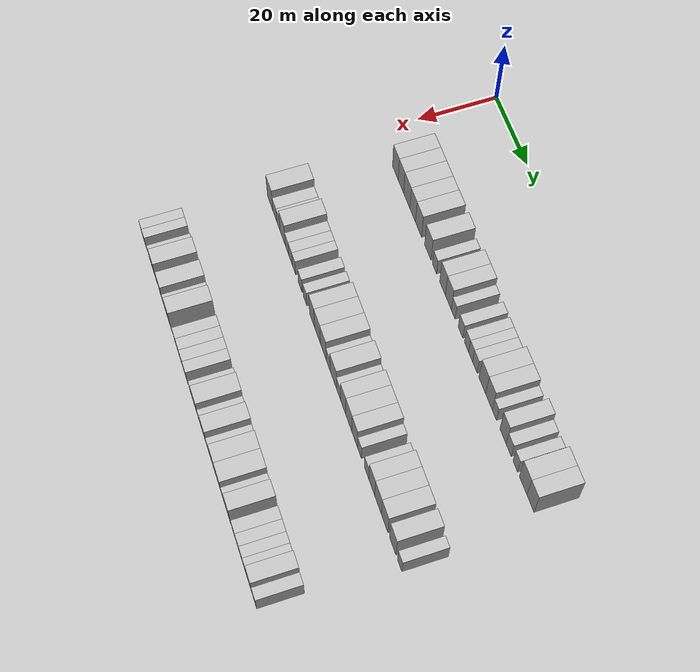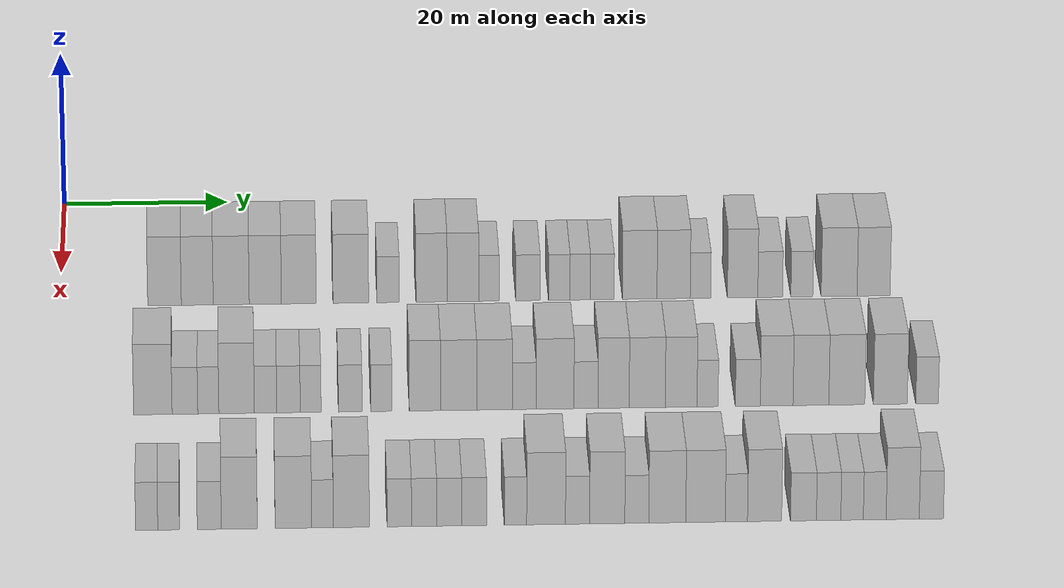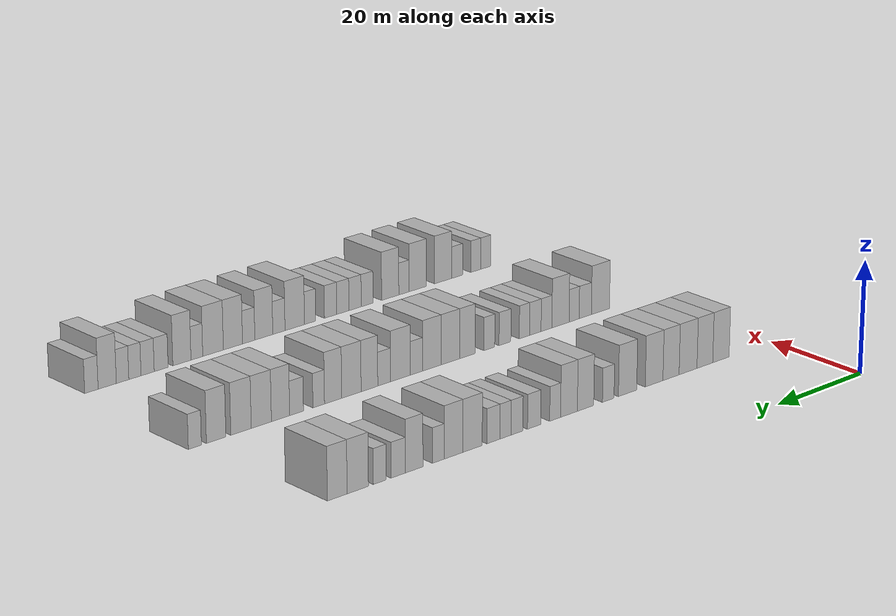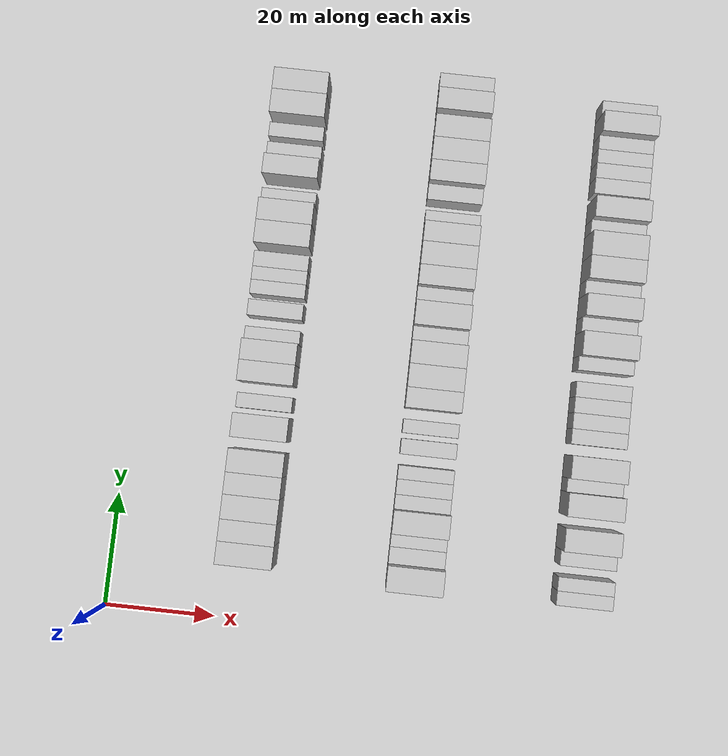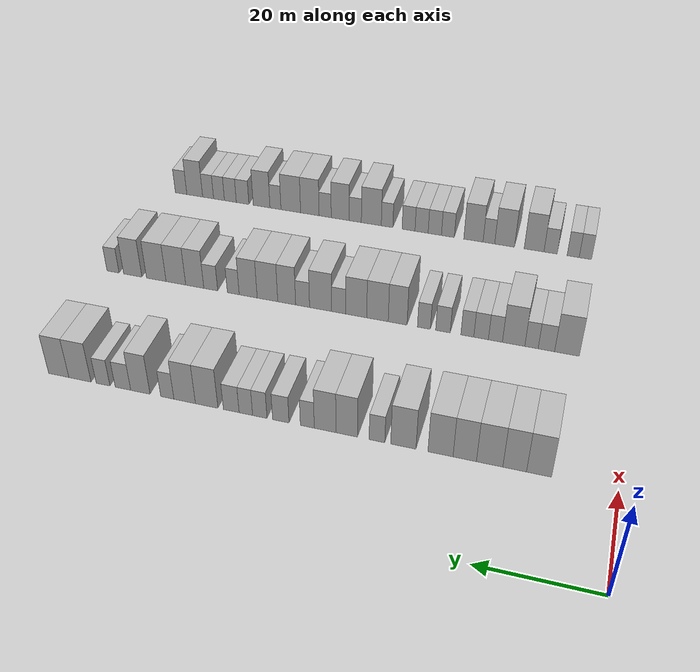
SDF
<sdf version="1.6">
 <world name="default">
  <model name="building_70">
   <static>1</static>
   <pose>25.0000 12.4730 0 0.000000 0.000000 0.000000</pose>
   <link name="link">
    <pose>0 0 4.50 0 0 0</pose>
    <collision name="collision"><geometry><box><size>10.0000 4.0057 9.0000</size></box></geometry></collision>
    <visual name="visual">
     <cast_shadows>0</cast_shadows>
     <geometry><box><size>10.0000 4.0057 9.0000</size></box></geometry>
     <material>
      <script>
       <uri>model://HANNAS_wall/materials/scripts</uri>
       <uri>model://HANNAS_wall/materials/textures</uri>
       <name>vrc/HANNAS_wall</name>
      </script>
     </material>
    </visual>
   </link>
  </model>
  <model name="building_71">
   <static>1</static>
   <pose>25.0000 16.3809 0 0.000000 0.000000 0.000000</pose>
   <link name="link">
    <pose>0 0 4.50 0 0 0</pose>
    <collision name="collision"><geometry><box><size>10.0000 3.8100 9.0000</size></box></geometry></collision>
    <visual name="visual">
     <cast_shadows>0</cast_shadows>
     <geometry><box><size>10.0000 3.8100 9.0000</size></box></geometry>
     <material>
      <script>
       <uri>model://HANNAS_wall/materials/scripts</uri>
       <uri>model://HANNAS_wall/materials/textures</uri>
       <name>vrc/HANNAS_wall</name>
      </script>
     </material>
    </visual>
   </link>
  </model>
  <model name="building_72">
   <static>1</static>
   <pose>25.0000 20.4324 0 0.000000 0.000000 0.000000</pose>
   <link name="link">
    <pose>0 0 4.50 0 0 0</pose>
    <collision name="collision"><geometry><box><size>10.0000 4.2931 9.0000</size></box></geometry></collision>
    <visual name="visual">
     <cast_shadows>0</cast_shadows>
     <geometry><box><size>10.0000 4.2931 9.0000</size></box></geometry>
     <material>
      <script>
       <uri>model://HANNAS_wall/materials/scripts</uri>
       <uri>model://HANNAS_wall/materials/textures</uri>
       <name>vrc/HANNAS_wall</name>
      </script>
     </material>
    </visual>
   </link>
  </model>
  <model name="building_73">
   <static>1</static>
   <pose>25.0000 24.5011 0 0.000000 0.000000 0.000000</pose>
   <link name="link">
    <pose>0 0 4.50 0 0 0</pose>
    <collision name="collision"><geometry><box><size>10.0000 3.8441 9.0000</size></box></geometry></collision>
    <visual name="visual">
     <cast_shadows>0</cast_shadows>
     <geometry><box><size>10.0000 3.8441 9.0000</size></box></geometry>
     <material>
      <script>
       <uri>model://HANNAS_wall/materials/scripts</uri>
       <uri>model://HANNAS_wall/materials/textures</uri>
       <name>vrc/HANNAS_wall</name>
      </script>
     </material>
    </visual>
   </link>
  </model>
  <model name="building_74">
   <static>1</static>
   <pose>25.0000 28.5045 0 0.000000 0.000000 0.000000</pose>
   <link name="link">
    <pose>0 0 4.50 0 0 0</pose>
    <collision name="collision"><geometry><box><size>10.0000 4.1627 9.0000</size></box></geometry></collision>
    <visual name="visual">
     <cast_shadows>0</cast_shadows>
     <geometry><box><size>10.0000 4.1627 9.0000</size></box></geometry>
     <material>
      <script>
       <uri>model://HANNAS_wall/materials/scripts</uri>
       <uri>model://HANNAS_wall/materials/textures</uri>
       <name>vrc/HANNAS_wall</name>
      </script>
     </material>
    </visual>
   </link>
  </model>
  <model name="building_75">
   <static>1</static>
   <pose>25.0000 34.7156 0 0.000000 0.000000 0.000000</pose>
   <link name="link">
    <pose>0 0 4.50 0 0 0</pose>
    <collision name="collision"><geometry><box><size>10.0000 4.2596 9.0000</size></box></geometry></collision>
    <visual name="visual">
     <cast_shadows>0</cast_shadows>
     <geometry><box><size>10.0000 4.2596 9.0000</size></box></geometry>
     <material>
      <script>
       <uri>model://HANNAS_wall/materials/scripts</uri>
       <uri>model://HANNAS_wall/materials/textures</uri>
       <name>vrc/HANNAS_wall</name>
      </script>
     </material>
    </visual>
   </link>
  </model>
  <model name="building_76">
   <static>1</static>
   <pose>25.0000 39.1798 0 0.000000 0.000000 0.000000</pose>
   <link name="link">
    <pose>0 0 3.00 0 0 0</pose>
    <collision name="collision"><geometry><box><size>10.0000 2.6688 6.0000</size></box></geometry></collision>
    <visual name="visual">
     <cast_shadows>0</cast_shadows>
     <geometry><box><size>10.0000 2.6688 6.0000</size></box></geometry>
     <material>
      <script>
       <uri>model://HANNAS_wall/materials/scripts</uri>
       <uri>model://HANNAS_wall/materials/textures</uri>
       <name>vrc/HANNAS_wall</name>
      </script>
     </material>
    </visual>
   </link>
  </model>
  <model name="building_77">
   <static>1</static>
   <pose>25.0000 44.3700 0 0.000000 0.000000 0.000000</pose>
   <link name="link">
    <pose>0 0 4.50 0 0 0</pose>
    <collision name="collision"><geometry><box><size>10.0000 3.7116 9.0000</size></box></geometry></collision>
    <visual name="visual">
     <cast_shadows>0</cast_shadows>
     <geometry><box><size>10.0000 3.7116 9.0000</size></box></geometry>
     <material>
      <script>
       <uri>model://HANNAS_wall/materials/scripts</uri>
       <uri>model://HANNAS_wall/materials/textures</uri>
       <name>vrc/HANNAS_wall</name>
      </script>
     </material>
    </visual>
   </link>
  </model>
  <model name="building_78">
   <static>1</static>
   <pose>25.0000 48.1157 0 0.000000 0.000000 0.000000</pose>
   <link name="link">
    <pose>0 0 4.50 0 0 0</pose>
    <collision name="collision"><geometry><box><size>10.0000 3.7798 9.0000</size></box></geometry></collision>
    <visual name="visual">
     <cast_shadows>0</cast_shadows>
     <geometry><box><size>10.0000 3.7798 9.0000</size></box></geometry>
     <material>
      <script>
       <uri>model://HANNAS_wall/materials/scripts</uri>
       <uri>model://HANNAS_wall/materials/textures</uri>
       <name>vrc/HANNAS_wall</name>
      </script>
     </material>
    </visual>
   </link>
  </model>
  <model name="building_79">
   <static>1</static>
   <pose>25.0000 51.2251 0 0.000000 0.000000 0.000000</pose>
   <link name="link">
    <pose>0 0 3.00 0 0 0</pose>
    <collision name="collision"><geometry><box><size>10.0000 2.4389 6.0000</size></box></geometry></collision>
    <visual name="visual">
     <cast_shadows>0</cast_shadows>
     <geometry><box><size>10.0000 2.4389 6.0000</size></box></geometry>
     <material>
      <script>
       <uri>model://HANNAS_wall/materials/scripts</uri>
       <uri>model://HANNAS_wall/materials/textures</uri>
       <name>vrc/HANNAS_wall</name>
      </script>
     </material>
    </visual>
   </link>
  </model>
  <model name="building_80">
   <static>1</static>
   <pose>25.0000 55.9031 0 0.000000 0.000000 0.000000</pose>
   <link name="link">
    <pose>0 0 3.00 0 0 0</pose>
    <collision name="collision"><geometry><box><size>10.0000 2.9170 6.0000</size></box></geometry></collision>
    <visual name="visual">
     <cast_shadows>0</cast_shadows>
     <geometry><box><size>10.0000 2.9170 6.0000</size></box></geometry>
     <material>
      <script>
       <uri>model://HANNAS_wall/materials/scripts</uri>
       <uri>model://HANNAS_wall/materials/textures</uri>
       <name>vrc/HANNAS_wall</name>
      </script>
     </material>
    </visual>
   </link>
  </model>
  <model name="building_81">
   <static>1</static>
   <pose>25.0000 59.6497 0 0.000000 0.000000 0.000000</pose>
   <link name="link">
    <pose>0 0 3.00 0 0 0</pose>
    <collision name="collision"><geometry><box><size>10.0000 2.5763 6.0000</size></box></geometry></collision>
    <visual name="visual">
     <cast_shadows>0</cast_shadows>
     <geometry><box><size>10.0000 2.5763 6.0000</size></box></geometry>
     <material>
      <script>
       <uri>model://HANNAS_wall/materials/scripts</uri>
       <uri>model://HANNAS_wall/materials/textures</uri>
       <name>vrc/HANNAS_wall</name>
      </script>
     </material>
    </visual>
   </link>
  </model>
  <model name="building_82">
   <static>1</static>
   <pose>25.0000 62.1545 0 0.000000 0.000000 0.000000</pose>
   <link name="link">
    <pose>0 0 3.00 0 0 0</pose>
    <collision name="collision"><geometry><box><size>10.0000 2.4333 6.0000</size></box></geometry></collision>
    <visual name="visual">
     <cast_shadows>0</cast_shadows>
     <geometry><box><size>10.0000 2.4333 6.0000</size></box></geometry>
     <material>
      <script>
       <uri>model://HANNAS_wall/materials/scripts</uri>
       <uri>model://HANNAS_wall/materials/textures</uri>
       <name>vrc/HANNAS_wall</name>
      </script>
     </material>
    </visual>
   </link>
  </model>
  <model name="building_83">
   <static>1</static>
   <pose>25.0000 64.7932 0 0.000000 0.000000 0.000000</pose>
   <link name="link">
    <pose>0 0 3.00 0 0 0</pose>
    <collision name="collision"><geometry><box><size>10.0000 2.8440 6.0000</size></box></geometry></collision>
    <visual name="visual">
     <cast_shadows>0</cast_shadows>
     <geometry><box><size>10.0000 2.8440 6.0000</size></box></geometry>
     <material>
      <script>
       <uri>model://HANNAS_wall/materials/scripts</uri>
       <uri>model://HANNAS_wall/materials/textures</uri>
       <name>vrc/HANNAS_wall</name>
      </script>
     </material>
    </visual>
   </link>
  </model>
  <model name="building_84">
   <static>1</static>
   <pose>25.0000 69.2838 0 0.000000 0.000000 0.000000</pose>
   <link name="link">
    <pose>0 0 4.50 0 0 0</pose>
    <collision name="collision"><geometry><box><size>10.0000 4.1374 9.0000</size></box></geometry></collision>
    <visual name="visual">
     <cast_shadows>0</cast_shadows>
     <geometry><box><size>10.0000 4.1374 9.0000</size></box></geometry>
     <material>
      <script>
       <uri>model://HANNAS_wall/materials/scripts</uri>
       <uri>model://HANNAS_wall/materials/textures</uri>
       <name>vrc/HANNAS_wall</name>
      </script>
     </material>
    </visual>
   </link>
  </model>
  <model name="building_85">
   <static>1</static>
   <pose>25.0000 73.3424 0 0.000000 0.000000 0.000000</pose>
   <link name="link">
    <pose>0 0 4.50 0 0 0</pose>
    <collision name="collision"><geometry><box><size>10.0000 3.9798 9.0000</size></box></geometry></collision>
    <visual name="visual">
     <cast_shadows>0</cast_shadows>
     <geometry><box><size>10.0000 3.9798 9.0000</size></box></geometry>
     <material>
      <script>
       <uri>model://HANNAS_wall/materials/scripts</uri>
       <uri>model://HANNAS_wall/materials/textures</uri>
       <name>vrc/HANNAS_wall</name>
      </script>
     </material>
    </visual>
   </link>
  </model>
  <model name="building_86">
   <static>1</static>
   <pose>25.0000 76.5625 0 0.000000 0.000000 0.000000</pose>
   <link name="link">
    <pose>0 0 3.00 0 0 0</pose>
    <collision name="collision"><geometry><box><size>10.0000 2.4604 6.0000</size></box></geometry></collision>
    <visual name="visual">
     <cast_shadows>0</cast_shadows>
     <geometry><box><size>10.0000 2.4604 6.0000</size></box></geometry>
     <material>
      <script>
       <uri>model://HANNAS_wall/materials/scripts</uri>
       <uri>model://HANNAS_wall/materials/textures</uri>
       <name>vrc/HANNAS_wall</name>
      </script>
     </material>
    </visual>
   </link>
  </model>
  <model name="building_87">
   <static>1</static>
   <pose>25.0000 81.6150 0 0.000000 0.000000 0.000000</pose>
   <link name="link">
    <pose>0 0 4.50 0 0 0</pose>
    <collision name="collision"><geometry><box><size>10.0000 3.6445 9.0000</size></box></geometry></collision>
    <visual name="visual">
     <cast_shadows>0</cast_shadows>
     <geometry><box><size>10.0000 3.6445 9.0000</size></box></geometry>
     <material>
      <script>
       <uri>model://HANNAS_wall/materials/scripts</uri>
       <uri>model://HANNAS_wall/materials/textures</uri>
       <name>vrc/HANNAS_wall</name>
      </script>
     </material>
    </visual>
   </link>
  </model>
  <model name="building_88">
   <static>1</static>
   <pose>25.0000 84.9180 0 0.000000 0.000000 0.000000</pose>
   <link name="link">
    <pose>0 0 3.00 0 0 0</pose>
    <collision name="collision"><geometry><box><size>10.0000 2.9616 6.0000</size></box></geometry></collision>
    <visual name="visual">
     <cast_shadows>0</cast_shadows>
     <geometry><box><size>10.0000 2.9616 6.0000</size></box></geometry>
     <material>
      <script>
       <uri>model://HANNAS_wall/materials/scripts</uri>
       <uri>model://HANNAS_wall/materials/textures</uri>
       <name>vrc/HANNAS_wall</name>
      </script>
     </material>
    </visual>
   </link>
  </model>
  <model name="building_89">
   <static>1</static>
   <pose>25.0000 88.7152 0 0.000000 0.000000 0.000000</pose>
   <link name="link">
    <pose>0 0 3.00 0 0 0</pose>
    <collision name="collision"><geometry><box><size>10.0000 2.6328 6.0000</size></box></geometry></collision>
    <visual name="visual">
     <cast_shadows>0</cast_shadows>
     <geometry><box><size>10.0000 2.6328 6.0000</size></box></geometry>
     <material>
      <script>
       <uri>model://HANNAS_wall/materials/scripts</uri>
       <uri>model://HANNAS_wall/materials/textures</uri>
       <name>vrc/HANNAS_wall</name>
      </script>
     </material>
    </visual>
   </link>
  </model>
  <model name="building_90">
   <static>1</static>
   <pose>25.0000 93.1855 0 0.000000 0.000000 0.000000</pose>
   <link name="link">
    <pose>0 0 4.50 0 0 0</pose>
    <collision name="collision"><geometry><box><size>10.0000 4.3077 9.0000</size></box></geometry></collision>
    <visual name="visual">
     <cast_shadows>0</cast_shadows>
     <geometry><box><size>10.0000 4.3077 9.0000</size></box></geometry>
     <material>
      <script>
       <uri>model://HANNAS_wall/materials/scripts</uri>
       <uri>model://HANNAS_wall/materials/textures</uri>
       <name>vrc/HANNAS_wall</name>
      </script>
     </material>
    </visual>
   </link>
  </model>
  <model name="building_91">
   <static>1</static>
   <pose>25.0000 97.3183 0 0.000000 0.000000 0.000000</pose>
   <link name="link">
    <pose>0 0 4.50 0 0 0</pose>
    <collision name="collision"><geometry><box><size>10.0000 3.9579 9.0000</size></box></geometry></collision>
    <visual name="visual">
     <cast_shadows>0</cast_shadows>
     <geometry><box><size>10.0000 3.9579 9.0000</size></box></geometry>
     <material>
      <script>
       <uri>model://HANNAS_wall/materials/scripts</uri>
       <uri>model://HANNAS_wall/materials/textures</uri>
       <name>vrc/HANNAS_wall</name>
      </script>
     </material>
    </visual>
   </link>
  </model>
  <model name="building_215">
   <static>1</static>
   <pose>55.0000 11.2846 0 0.000000 0.000000 0.000000</pose>
   <link name="link">
    <pose>0 0 4.50 0 0 0</pose>
    <collision name="collision"><geometry><box><size>10.0000 4.4457 9.0000</size></box></geometry></collision>
    <visual name="visual">
     <cast_shadows>0</cast_shadows>
     <geometry><box><size>10.0000 4.4457 9.0000</size></box></geometry>
     <material>
      <script>
       <uri>model://HANNAS_wall/materials/scripts</uri>
       <uri>model://HANNAS_wall/materials/textures</uri>
       <name>vrc/HANNAS_wall</name>
      </script>
     </material>
    </visual>
   </link>
  </model>
  <model name="building_216">
   <static>1</static>
   <pose>55.0000 14.9952 0 0.000000 0.000000 0.000000</pose>
   <link name="link">
    <pose>0 0 3.00 0 0 0</pose>
    <collision name="collision"><geometry><box><size>10.0000 2.9755 6.0000</size></box></geometry></collision>
    <visual name="visual">
     <cast_shadows>0</cast_shadows>
     <geometry><box><size>10.0000 2.9755 6.0000</size></box></geometry>
     <material>
      <script>
       <uri>model://HANNAS_wall/materials/scripts</uri>
       <uri>model://HANNAS_wall/materials/textures</uri>
       <name>vrc/HANNAS_wall</name>
      </script>
     </material>
    </visual>
   </link>
  </model>
  <model name="building_217">
   <static>1</static>
   <pose>55.0000 17.7045 0 0.000000 0.000000 0.000000</pose>
   <link name="link">
    <pose>0 0 3.00 0 0 0</pose>
    <collision name="collision"><geometry><box><size>10.0000 2.4432 6.0000</size></box></geometry></collision>
    <visual name="visual">
     <cast_shadows>0</cast_shadows>
     <geometry><box><size>10.0000 2.4432 6.0000</size></box></geometry>
     <material>
      <script>
       <uri>model://HANNAS_wall/materials/scripts</uri>
       <uri>model://HANNAS_wall/materials/textures</uri>
       <name>vrc/HANNAS_wall</name>
      </script>
     </material>
    </visual>
   </link>
  </model>
  <model name="building_218">
   <static>1</static>
   <pose>55.0000 20.9870 0 0.000000 0.000000 0.000000</pose>
   <link name="link">
    <pose>0 0 4.50 0 0 0</pose>
    <collision name="collision"><geometry><box><size>10.0000 4.1217 9.0000</size></box></geometry></collision>
    <visual name="visual">
     <cast_shadows>0</cast_shadows>
     <geometry><box><size>10.0000 4.1217 9.0000</size></box></geometry>
     <material>
      <script>
       <uri>model://HANNAS_wall/materials/scripts</uri>
       <uri>model://HANNAS_wall/materials/textures</uri>
       <name>vrc/HANNAS_wall</name>
      </script>
     </material>
    </visual>
   </link>
  </model>
  <model name="building_219">
   <static>1</static>
   <pose>55.0000 24.3437 0 0.000000 0.000000 0.000000</pose>
   <link name="link">
    <pose>0 0 3.00 0 0 0</pose>
    <collision name="collision"><geometry><box><size>10.0000 2.5918 6.0000</size></box></geometry></collision>
    <visual name="visual">
     <cast_shadows>0</cast_shadows>
     <geometry><box><size>10.0000 2.5918 6.0000</size></box></geometry>
     <material>
      <script>
       <uri>model://HANNAS_wall/materials/scripts</uri>
       <uri>model://HANNAS_wall/materials/textures</uri>
       <name>vrc/HANNAS_wall</name>
      </script>
     </material>
    </visual>
   </link>
  </model>
  <model name="building_220">
   <static>1</static>
   <pose>55.0000 27.0000 0 0.000000 0.000000 0.000000</pose>
   <link name="link">
    <pose>0 0 3.00 0 0 0</pose>
    <collision name="collision"><geometry><box><size>10.0000 2.7207 6.0000</size></box></geometry></collision>
    <visual name="visual">
     <cast_shadows>0</cast_shadows>
     <geometry><box><size>10.0000 2.7207 6.0000</size></box></geometry>
     <material>
      <script>
       <uri>model://HANNAS_wall/materials/scripts</uri>
       <uri>model://HANNAS_wall/materials/textures</uri>
       <name>vrc/HANNAS_wall</name>
      </script>
     </material>
    </visual>
   </link>
  </model>
  <model name="building_221">
   <static>1</static>
   <pose>55.0000 29.5731 0 0.000000 0.000000 0.000000</pose>
   <link name="link">
    <pose>0 0 3.00 0 0 0</pose>
    <collision name="collision"><geometry><box><size>10.0000 2.4255 6.0000</size></box></geometry></collision>
    <visual name="visual">
     <cast_shadows>0</cast_shadows>
     <geometry><box><size>10.0000 2.4255 6.0000</size></box></geometry>
     <material>
      <script>
       <uri>model://HANNAS_wall/materials/scripts</uri>
       <uri>model://HANNAS_wall/materials/textures</uri>
       <name>vrc/HANNAS_wall</name>
      </script>
     </material>
    </visual>
   </link>
  </model>
  <model name="building_222">
   <static>1</static>
   <pose>55.0000 34.1643 0 0.000000 0.000000 0.000000</pose>
   <link name="link">
    <pose>0 0 3.00 0 0 0</pose>
    <collision name="collision"><geometry><box><size>10.0000 2.7571 6.0000</size></box></geometry></collision>
    <visual name="visual">
     <cast_shadows>0</cast_shadows>
     <geometry><box><size>10.0000 2.7571 6.0000</size></box></geometry>
     <material>
      <script>
       <uri>model://HANNAS_wall/materials/scripts</uri>
       <uri>model://HANNAS_wall/materials/textures</uri>
       <name>vrc/HANNAS_wall</name>
      </script>
     </material>
    </visual>
   </link>
  </model>
  <model name="building_223">
   <static>1</static>
   <pose>55.0000 37.7818 0 0.000000 0.000000 0.000000</pose>
   <link name="link">
    <pose>0 0 3.00 0 0 0</pose>
    <collision name="collision"><geometry><box><size>10.0000 2.4778 6.0000</size></box></geometry></collision>
    <visual name="visual">
     <cast_shadows>0</cast_shadows>
     <geometry><box><size>10.0000 2.4778 6.0000</size></box></geometry>
     <material>
      <script>
       <uri>model://HANNAS_wall/materials/scripts</uri>
       <uri>model://HANNAS_wall/materials/textures</uri>
       <name>vrc/HANNAS_wall</name>
      </script>
     </material>
    </visual>
   </link>
  </model>
  <model name="building_224">
   <static>1</static>
   <pose>55.0000 42.8329 0 0.000000 0.000000 0.000000</pose>
   <link name="link">
    <pose>0 0 4.50 0 0 0</pose>
    <collision name="collision"><geometry><box><size>10.0000 3.6245 9.0000</size></box></geometry></collision>
    <visual name="visual">
     <cast_shadows>0</cast_shadows>
     <geometry><box><size>10.0000 3.6245 9.0000</size></box></geometry>
     <material>
      <script>
       <uri>model://HANNAS_wall/materials/scripts</uri>
       <uri>model://HANNAS_wall/materials/textures</uri>
       <name>vrc/HANNAS_wall</name>
      </script>
     </material>
    </visual>
   </link>
  </model>
  <model name="building_225">
   <static>1</static>
   <pose>55.0000 46.7389 0 0.000000 0.000000 0.000000</pose>
   <link name="link">
    <pose>0 0 4.50 0 0 0</pose>
    <collision name="collision"><geometry><box><size>10.0000 4.1873 9.0000</size></box></geometry></collision>
    <visual name="visual">
     <cast_shadows>0</cast_shadows>
     <geometry><box><size>10.0000 4.1873 9.0000</size></box></geometry>
     <material>
      <script>
       <uri>model://HANNAS_wall/materials/scripts</uri>
       <uri>model://HANNAS_wall/materials/textures</uri>
       <name>vrc/HANNAS_wall</name>
      </script>
     </material>
    </visual>
   </link>
  </model>
  <model name="building_226">
   <static>1</static>
   <pose>55.0000 50.8969 0 0.000000 0.000000 0.000000</pose>
   <link name="link">
    <pose>0 0 4.50 0 0 0</pose>
    <collision name="collision"><geometry><box><size>10.0000 4.1287 9.0000</size></box></geometry></collision>
    <visual name="visual">
     <cast_shadows>0</cast_shadows>
     <geometry><box><size>10.0000 4.1287 9.0000</size></box></geometry>
     <material>
      <script>
       <uri>model://HANNAS_wall/materials/scripts</uri>
       <uri>model://HANNAS_wall/materials/textures</uri>
       <name>vrc/HANNAS_wall</name>
      </script>
     </material>
    </visual>
   </link>
  </model>
  <model name="building_227">
   <static>1</static>
   <pose>55.0000 54.3528 0 0.000000 0.000000 0.000000</pose>
   <link name="link">
    <pose>0 0 3.00 0 0 0</pose>
    <collision name="collision"><geometry><box><size>10.0000 2.7833 6.0000</size></box></geometry></collision>
    <visual name="visual">
     <cast_shadows>0</cast_shadows>
     <geometry><box><size>10.0000 2.7833 6.0000</size></box></geometry>
     <material>
      <script>
       <uri>model://HANNAS_wall/materials/scripts</uri>
       <uri>model://HANNAS_wall/materials/textures</uri>
       <name>vrc/HANNAS_wall</name>
      </script>
     </material>
    </visual>
   </link>
  </model>
  <model name="building_228">
   <static>1</static>
   <pose>55.0000 57.9406 0 0.000000 0.000000 0.000000</pose>
   <link name="link">
    <pose>0 0 4.50 0 0 0</pose>
    <collision name="collision"><geometry><box><size>10.0000 4.3922 9.0000</size></box></geometry></collision>
    <visual name="visual">
     <cast_shadows>0</cast_shadows>
     <geometry><box><size>10.0000 4.3922 9.0000</size></box></geometry>
     <material>
      <script>
       <uri>model://HANNAS_wall/materials/scripts</uri>
       <uri>model://HANNAS_wall/materials/textures</uri>
       <name>vrc/HANNAS_wall</name>
      </script>
     </material>
    </visual>
   </link>
  </model>
  <model name="building_229">
   <static>1</static>
   <pose>55.0000 61.5303 0 0.000000 0.000000 0.000000</pose>
   <link name="link">
    <pose>0 0 3.00 0 0 0</pose>
    <collision name="collision"><geometry><box><size>10.0000 2.7872 6.0000</size></box></geometry></collision>
    <visual name="visual">
     <cast_shadows>0</cast_shadows>
     <geometry><box><size>10.0000 2.7872 6.0000</size></box></geometry>
     <material>
      <script>
       <uri>model://HANNAS_wall/materials/scripts</uri>
       <uri>model://HANNAS_wall/materials/textures</uri>
       <name>vrc/HANNAS_wall</name>
      </script>
     </material>
    </visual>
   </link>
  </model>
  <model name="building_230">
   <static>1</static>
   <pose>55.0000 64.7393 0 0.000000 0.000000 0.000000</pose>
   <link name="link">
    <pose>0 0 4.50 0 0 0</pose>
    <collision name="collision"><geometry><box><size>10.0000 3.6307 9.0000</size></box></geometry></collision>
    <visual name="visual">
     <cast_shadows>0</cast_shadows>
     <geometry><box><size>10.0000 3.6307 9.0000</size></box></geometry>
     <material>
      <script>
       <uri>model://HANNAS_wall/materials/scripts</uri>
       <uri>model://HANNAS_wall/materials/textures</uri>
       <name>vrc/HANNAS_wall</name>
      </script>
     </material>
    </visual>
   </link>
  </model>
  <model name="building_231">
   <static>1</static>
   <pose>55.0000 68.6512 0 0.000000 0.000000 0.000000</pose>
   <link name="link">
    <pose>0 0 4.50 0 0 0</pose>
    <collision name="collision"><geometry><box><size>10.0000 4.1932 9.0000</size></box></geometry></collision>
    <visual name="visual">
     <cast_shadows>0</cast_shadows>
     <geometry><box><size>10.0000 4.1932 9.0000</size></box></geometry>
     <material>
      <script>
       <uri>model://HANNAS_wall/materials/scripts</uri>
       <uri>model://HANNAS_wall/materials/textures</uri>
       <name>vrc/HANNAS_wall</name>
      </script>
     </material>
    </visual>
   </link>
  </model>
  <model name="building_232">
   <static>1</static>
   <pose>55.0000 72.5952 0 0.000000 0.000000 0.000000</pose>
   <link name="link">
    <pose>0 0 4.50 0 0 0</pose>
    <collision name="collision"><geometry><box><size>10.0000 3.6947 9.0000</size></box></geometry></collision>
    <visual name="visual">
     <cast_shadows>0</cast_shadows>
     <geometry><box><size>10.0000 3.6947 9.0000</size></box></geometry>
     <material>
      <script>
       <uri>model://HANNAS_wall/materials/scripts</uri>
       <uri>model://HANNAS_wall/materials/textures</uri>
       <name>vrc/HANNAS_wall</name>
      </script>
     </material>
    </visual>
   </link>
  </model>
  <model name="building_233">
   <static>1</static>
   <pose>55.0000 75.6715 0 0.000000 0.000000 0.000000</pose>
   <link name="link">
    <pose>0 0 3.00 0 0 0</pose>
    <collision name="collision"><geometry><box><size>10.0000 2.4580 6.0000</size></box></geometry></collision>
    <visual name="visual">
     <cast_shadows>0</cast_shadows>
     <geometry><box><size>10.0000 2.4580 6.0000</size></box></geometry>
     <material>
      <script>
       <uri>model://HANNAS_wall/materials/scripts</uri>
       <uri>model://HANNAS_wall/materials/textures</uri>
       <name>vrc/HANNAS_wall</name>
      </script>
     </material>
    </visual>
   </link>
  </model>
  <model name="building_234">
   <static>1</static>
   <pose>55.0000 80.3546 0 0.000000 0.000000 0.000000</pose>
   <link name="link">
    <pose>0 0 3.00 0 0 0</pose>
    <collision name="collision"><geometry><box><size>10.0000 2.9081 6.0000</size></box></geometry></collision>
    <visual name="visual">
     <cast_shadows>0</cast_shadows>
     <geometry><box><size>10.0000 2.9081 6.0000</size></box></geometry>
     <material>
      <script>
       <uri>model://HANNAS_wall/materials/scripts</uri>
       <uri>model://HANNAS_wall/materials/textures</uri>
       <name>vrc/HANNAS_wall</name>
      </script>
     </material>
    </visual>
   </link>
  </model>
  <model name="building_235">
   <static>1</static>
   <pose>55.0000 83.7127 0 0.000000 0.000000 0.000000</pose>
   <link name="link">
    <pose>0 0 4.50 0 0 0</pose>
    <collision name="collision"><geometry><box><size>10.0000 3.8082 9.0000</size></box></geometry></collision>
    <visual name="visual">
     <cast_shadows>0</cast_shadows>
     <geometry><box><size>10.0000 3.8082 9.0000</size></box></geometry>
     <material>
      <script>
       <uri>model://HANNAS_wall/materials/scripts</uri>
       <uri>model://HANNAS_wall/materials/textures</uri>
       <name>vrc/HANNAS_wall</name>
      </script>
     </material>
    </visual>
   </link>
  </model>
  <model name="building_236">
   <static>1</static>
   <pose>55.0000 87.6999 0 0.000000 0.000000 0.000000</pose>
   <link name="link">
    <pose>0 0 4.50 0 0 0</pose>
    <collision name="collision"><geometry><box><size>10.0000 4.1662 9.0000</size></box></geometry></collision>
    <visual name="visual">
     <cast_shadows>0</cast_shadows>
     <geometry><box><size>10.0000 4.1662 9.0000</size></box></geometry>
     <material>
      <script>
       <uri>model://HANNAS_wall/materials/scripts</uri>
       <uri>model://HANNAS_wall/materials/textures</uri>
       <name>vrc/HANNAS_wall</name>
      </script>
     </material>
    </visual>
   </link>
  </model>
  <model name="building_237">
   <static>1</static>
   <pose>55.0000 91.8786 0 0.000000 0.000000 0.000000</pose>
   <link name="link">
    <pose>0 0 4.50 0 0 0</pose>
    <collision name="collision"><geometry><box><size>10.0000 4.1913 9.0000</size></box></geometry></collision>
    <visual name="visual">
     <cast_shadows>0</cast_shadows>
     <geometry><box><size>10.0000 4.1913 9.0000</size></box></geometry>
     <material>
      <script>
       <uri>model://HANNAS_wall/materials/scripts</uri>
       <uri>model://HANNAS_wall/materials/textures</uri>
       <name>vrc/HANNAS_wall</name>
      </script>
     </material>
    </visual>
   </link>
  </model>
  <model name="building_238">
   <static>1</static>
   <pose>55.0000 96.9450 0 0.000000 0.000000 0.000000</pose>
   <link name="link">
    <pose>0 0 4.50 0 0 0</pose>
    <collision name="collision"><geometry><box><size>10.0000 3.9414 9.0000</size></box></geometry></collision>
    <visual name="visual">
     <cast_shadows>0</cast_shadows>
     <geometry><box><size>10.0000 3.9414 9.0000</size></box></geometry>
     <material>
      <script>
       <uri>model://HANNAS_wall/materials/scripts</uri>
       <uri>model://HANNAS_wall/materials/textures</uri>
       <name>vrc/HANNAS_wall</name>
      </script>
     </material>
    </visual>
   </link>
  </model>
  <model name="building_239">
   <static>1</static>
   <pose>55.0000 101.2289 0 0.000000 0.000000 0.000000</pose>
   <link name="link">
    <pose>0 0 3.00 0 0 0</pose>
    <collision name="collision"><geometry><box><size>10.0000 2.6264 6.0000</size></box></geometry></collision>
    <visual name="visual">
     <cast_shadows>0</cast_shadows>
     <geometry><box><size>10.0000 2.6264 6.0000</size></box></geometry>
     <material>
      <script>
       <uri>model://HANNAS_wall/materials/scripts</uri>
       <uri>model://HANNAS_wall/materials/textures</uri>
       <name>vrc/HANNAS_wall</name>
      </script>
     </material>
    </visual>
   </link>
  </model>
  <model name="building_362">
   <static>1</static>
   <pose>85.0000 10.7920 0 0.000000 0.000000 0.000000</pose>
   <link name="link">
    <pose>0 0 3.00 0 0 0</pose>
    <collision name="collision"><geometry><box><size>10.0000 2.4812 6.0000</size></box></geometry></collision>
    <visual name="visual">
     <cast_shadows>0</cast_shadows>
     <geometry><box><size>10.0000 2.4812 6.0000</size></box></geometry>
     <material>
      <script>
       <uri>model://HANNAS_wall/materials/scripts</uri>
       <uri>model://HANNAS_wall/materials/textures</uri>
       <name>vrc/HANNAS_wall</name>
      </script>
     </material>
    </visual>
   </link>
  </model>
  <model name="building_363">
   <static>1</static>
   <pose>85.0000 13.2525 0 0.000000 0.000000 0.000000</pose>
   <link name="link">
    <pose>0 0 3.00 0 0 0</pose>
    <collision name="collision"><geometry><box><size>10.0000 2.4398 6.0000</size></box></geometry></collision>
    <visual name="visual">
     <cast_shadows>0</cast_shadows>
     <geometry><box><size>10.0000 2.4398 6.0000</size></box></geometry>
     <material>
      <script>
       <uri>model://HANNAS_wall/materials/scripts</uri>
       <uri>model://HANNAS_wall/materials/textures</uri>
       <name>vrc/HANNAS_wall</name>
      </script>
     </material>
    </visual>
   </link>
  </model>
  <model name="building_364">
   <static>1</static>
   <pose>85.0000 17.8233 0 0.000000 0.000000 0.000000</pose>
   <link name="link">
    <pose>0 0 3.00 0 0 0</pose>
    <collision name="collision"><geometry><box><size>10.0000 2.7019 6.0000</size></box></geometry></collision>
    <visual name="visual">
     <cast_shadows>0</cast_shadows>
     <geometry><box><size>10.0000 2.7019 6.0000</size></box></geometry>
     <material>
      <script>
       <uri>model://HANNAS_wall/materials/scripts</uri>
       <uri>model://HANNAS_wall/materials/textures</uri>
       <name>vrc/HANNAS_wall</name>
      </script>
     </material>
    </visual>
   </link>
  </model>
  <model name="building_365">
   <static>1</static>
   <pose>85.0000 21.2029 0 0.000000 0.000000 0.000000</pose>
   <link name="link">
    <pose>0 0 4.50 0 0 0</pose>
    <collision name="collision"><geometry><box><size>10.0000 4.0573 9.0000</size></box></geometry></collision>
    <visual name="visual">
     <cast_shadows>0</cast_shadows>
     <geometry><box><size>10.0000 4.0573 9.0000</size></box></geometry>
     <material>
      <script>
       <uri>model://HANNAS_wall/materials/scripts</uri>
       <uri>model://HANNAS_wall/materials/textures</uri>
       <name>vrc/HANNAS_wall</name>
      </script>
     </material>
    </visual>
   </link>
  </model>
  <model name="building_366">
   <static>1</static>
   <pose>85.0000 27.2834 0 0.000000 0.000000 0.000000</pose>
   <link name="link">
    <pose>0 0 4.50 0 0 0</pose>
    <collision name="collision"><geometry><box><size>10.0000 4.1037 9.0000</size></box></geometry></collision>
    <visual name="visual">
     <cast_shadows>0</cast_shadows>
     <geometry><box><size>10.0000 4.1037 9.0000</size></box></geometry>
     <material>
      <script>
       <uri>model://HANNAS_wall/materials/scripts</uri>
       <uri>model://HANNAS_wall/materials/textures</uri>
       <name>vrc/HANNAS_wall</name>
      </script>
     </material>
    </visual>
   </link>
  </model>
  <model name="building_367">
   <static>1</static>
   <pose>85.0000 30.5546 0 0.000000 0.000000 0.000000</pose>
   <link name="link">
    <pose>0 0 3.00 0 0 0</pose>
    <collision name="collision"><geometry><box><size>10.0000 2.4386 6.0000</size></box></geometry></collision>
    <visual name="visual">
     <cast_shadows>0</cast_shadows>
     <geometry><box><size>10.0000 2.4386 6.0000</size></box></geometry>
     <material>
      <script>
       <uri>model://HANNAS_wall/materials/scripts</uri>
       <uri>model://HANNAS_wall/materials/textures</uri>
       <name>vrc/HANNAS_wall</name>
      </script>
     </material>
    </visual>
   </link>
  </model>
  <model name="building_368">
   <static>1</static>
   <pose>85.0000 33.7997 0 0.000000 0.000000 0.000000</pose>
   <link name="link">
    <pose>0 0 4.50 0 0 0</pose>
    <collision name="collision"><geometry><box><size>10.0000 4.0516 9.0000</size></box></geometry></collision>
    <visual name="visual">
     <cast_shadows>0</cast_shadows>
     <geometry><box><size>10.0000 4.0516 9.0000</size></box></geometry>
     <material>
      <script>
       <uri>model://HANNAS_wall/materials/scripts</uri>
       <uri>model://HANNAS_wall/materials/textures</uri>
       <name>vrc/HANNAS_wall</name>
      </script>
     </material>
    </visual>
   </link>
  </model>
  <model name="building_369">
   <static>1</static>
   <pose>85.0000 39.1956 0 0.000000 0.000000 0.000000</pose>
   <link name="link">
    <pose>0 0 3.00 0 0 0</pose>
    <collision name="collision"><geometry><box><size>10.0000 2.7403 6.0000</size></box></geometry></collision>
    <visual name="visual">
     <cast_shadows>0</cast_shadows>
     <geometry><box><size>10.0000 2.7403 6.0000</size></box></geometry>
     <material>
      <script>
       <uri>model://HANNAS_wall/materials/scripts</uri>
       <uri>model://HANNAS_wall/materials/textures</uri>
       <name>vrc/HANNAS_wall</name>
      </script>
     </material>
    </visual>
   </link>
  </model>
  <model name="building_370">
   <static>1</static>
   <pose>85.0000 41.9871 0 0.000000 0.000000 0.000000</pose>
   <link name="link">
    <pose>0 0 3.00 0 0 0</pose>
    <collision name="collision"><geometry><box><size>10.0000 2.8426 6.0000</size></box></geometry></collision>
    <visual name="visual">
     <cast_shadows>0</cast_shadows>
     <geometry><box><size>10.0000 2.8426 6.0000</size></box></geometry>
     <material>
      <script>
       <uri>model://HANNAS_wall/materials/scripts</uri>
       <uri>model://HANNAS_wall/materials/textures</uri>
       <name>vrc/HANNAS_wall</name>
      </script>
     </material>
    </visual>
   </link>
  </model>
  <model name="building_371">
   <static>1</static>
   <pose>85.0000 44.8154 0 0.000000 0.000000 0.000000</pose>
   <link name="link">
    <pose>0 0 3.00 0 0 0</pose>
    <collision name="collision"><geometry><box><size>10.0000 2.8141 6.0000</size></box></geometry></collision>
    <visual name="visual">
     <cast_shadows>0</cast_shadows>
     <geometry><box><size>10.0000 2.8141 6.0000</size></box></geometry>
     <material>
      <script>
       <uri>model://HANNAS_wall/materials/scripts</uri>
       <uri>model://HANNAS_wall/materials/textures</uri>
       <name>vrc/HANNAS_wall</name>
      </script>
     </material>
    </visual>
   </link>
  </model>
  <model name="building_372">
   <static>1</static>
   <pose>85.0000 47.6192 0 0.000000 0.000000 0.000000</pose>
   <link name="link">
    <pose>0 0 3.00 0 0 0</pose>
    <collision name="collision"><geometry><box><size>10.0000 2.7934 6.0000</size></box></geometry></collision>
    <visual name="visual">
     <cast_shadows>0</cast_shadows>
     <geometry><box><size>10.0000 2.7934 6.0000</size></box></geometry>
     <material>
      <script>
       <uri>model://HANNAS_wall/materials/scripts</uri>
       <uri>model://HANNAS_wall/materials/textures</uri>
       <name>vrc/HANNAS_wall</name>
      </script>
     </material>
    </visual>
   </link>
  </model>
  <model name="building_373">
   <static>1</static>
   <pose>85.0000 52.2758 0 0.000000 0.000000 0.000000</pose>
   <link name="link">
    <pose>0 0 3.00 0 0 0</pose>
    <collision name="collision"><geometry><box><size>10.0000 2.5197 6.0000</size></box></geometry></collision>
    <visual name="visual">
     <cast_shadows>0</cast_shadows>
     <geometry><box><size>10.0000 2.5197 6.0000</size></box></geometry>
     <material>
      <script>
       <uri>model://HANNAS_wall/materials/scripts</uri>
       <uri>model://HANNAS_wall/materials/textures</uri>
       <name>vrc/HANNAS_wall</name>
      </script>
     </material>
    </visual>
   </link>
  </model>
  <model name="building_374">
   <static>1</static>
   <pose>85.0000 55.7226 0 0.000000 0.000000 0.000000</pose>
   <link name="link">
    <pose>0 0 4.50 0 0 0</pose>
    <collision name="collision"><geometry><box><size>10.0000 4.3739 9.0000</size></box></geometry></collision>
    <visual name="visual">
     <cast_shadows>0</cast_shadows>
     <geometry><box><size>10.0000 4.3739 9.0000</size></box></geometry>
     <material>
      <script>
       <uri>model://HANNAS_wall/materials/scripts</uri>
       <uri>model://HANNAS_wall/materials/textures</uri>
       <name>vrc/HANNAS_wall</name>
      </script>
     </material>
    </visual>
   </link>
  </model>
  <model name="building_375">
   <static>1</static>
   <pose>85.0000 59.2728 0 0.000000 0.000000 0.000000</pose>
   <link name="link">
    <pose>0 0 3.00 0 0 0</pose>
    <collision name="collision"><geometry><box><size>10.0000 2.7263 6.0000</size></box></geometry></collision>
    <visual name="visual">
     <cast_shadows>0</cast_shadows>
     <geometry><box><size>10.0000 2.7263 6.0000</size></box></geometry>
     <material>
      <script>
       <uri>model://HANNAS_wall/materials/scripts</uri>
       <uri>model://HANNAS_wall/materials/textures</uri>
       <name>vrc/HANNAS_wall</name>
      </script>
     </material>
    </visual>
   </link>
  </model>
  <model name="building_376">
   <static>1</static>
   <pose>85.0000 62.6148 0 0.000000 0.000000 0.000000</pose>
   <link name="link">
    <pose>0 0 4.50 0 0 0</pose>
    <collision name="collision"><geometry><box><size>10.0000 3.9578 9.0000</size></box></geometry></collision>
    <visual name="visual">
     <cast_shadows>0</cast_shadows>
     <geometry><box><size>10.0000 3.9578 9.0000</size></box></geometry>
     <material>
      <script>
       <uri>model://HANNAS_wall/materials/scripts</uri>
       <uri>model://HANNAS_wall/materials/textures</uri>
       <name>vrc/HANNAS_wall</name>
      </script>
     </material>
    </visual>
   </link>
  </model>
  <model name="building_377">
   <static>1</static>
   <pose>85.0000 65.9475 0 0.000000 0.000000 0.000000</pose>
   <link name="link">
    <pose>0 0 3.00 0 0 0</pose>
    <collision name="collision"><geometry><box><size>10.0000 2.7075 6.0000</size></box></geometry></collision>
    <visual name="visual">
     <cast_shadows>0</cast_shadows>
     <geometry><box><size>10.0000 2.7075 6.0000</size></box></geometry>
     <material>
      <script>
       <uri>model://HANNAS_wall/materials/scripts</uri>
       <uri>model://HANNAS_wall/materials/textures</uri>
       <name>vrc/HANNAS_wall</name>
      </script>
     </material>
    </visual>
   </link>
  </model>
  <model name="building_378">
   <static>1</static>
   <pose>85.0000 69.3850 0 0.000000 0.000000 0.000000</pose>
   <link name="link">
    <pose>0 0 4.50 0 0 0</pose>
    <collision name="collision"><geometry><box><size>10.0000 4.1675 9.0000</size></box></geometry></collision>
    <visual name="visual">
     <cast_shadows>0</cast_shadows>
     <geometry><box><size>10.0000 4.1675 9.0000</size></box></geometry>
     <material>
      <script>
       <uri>model://HANNAS_wall/materials/scripts</uri>
       <uri>model://HANNAS_wall/materials/textures</uri>
       <name>vrc/HANNAS_wall</name>
      </script>
     </material>
    </visual>
   </link>
  </model>
  <model name="building_379">
   <static>1</static>
   <pose>85.0000 73.6961 0 0.000000 0.000000 0.000000</pose>
   <link name="link">
    <pose>0 0 4.50 0 0 0</pose>
    <collision name="collision"><geometry><box><size>10.0000 4.4548 9.0000</size></box></geometry></collision>
    <visual name="visual">
     <cast_shadows>0</cast_shadows>
     <geometry><box><size>10.0000 4.4548 9.0000</size></box></geometry>
     <material>
      <script>
       <uri>model://HANNAS_wall/materials/scripts</uri>
       <uri>model://HANNAS_wall/materials/textures</uri>
       <name>vrc/HANNAS_wall</name>
      </script>
     </material>
    </visual>
   </link>
  </model>
  <model name="building_380">
   <static>1</static>
   <pose>85.0000 77.1793 0 0.000000 0.000000 0.000000</pose>
   <link name="link">
    <pose>0 0 3.00 0 0 0</pose>
    <collision name="collision"><geometry><box><size>10.0000 2.5116 6.0000</size></box></geometry></collision>
    <visual name="visual">
     <cast_shadows>0</cast_shadows>
     <geometry><box><size>10.0000 2.5116 6.0000</size></box></geometry>
     <material>
      <script>
       <uri>model://HANNAS_wall/materials/scripts</uri>
       <uri>model://HANNAS_wall/materials/textures</uri>
       <name>vrc/HANNAS_wall</name>
      </script>
     </material>
    </visual>
   </link>
  </model>
  <model name="building_381">
   <static>1</static>
   <pose>85.0000 80.3607 0 0.000000 0.000000 0.000000</pose>
   <link name="link">
    <pose>0 0 4.50 0 0 0</pose>
    <collision name="collision"><geometry><box><size>10.0000 3.8513 9.0000</size></box></geometry></collision>
    <visual name="visual">
     <cast_shadows>0</cast_shadows>
     <geometry><box><size>10.0000 3.8513 9.0000</size></box></geometry>
     <material>
      <script>
       <uri>model://HANNAS_wall/materials/scripts</uri>
       <uri>model://HANNAS_wall/materials/textures</uri>
       <name>vrc/HANNAS_wall</name>
      </script>
     </material>
    </visual>
   </link>
  </model>
  <model name="building_382">
   <static>1</static>
   <pose>85.0000 84.7493 0 0.000000 0.000000 0.000000</pose>
   <link name="link">
    <pose>0 0 3.00 0 0 0</pose>
    <collision name="collision"><geometry><box><size>10.0000 2.9258 6.0000</size></box></geometry></collision>
    <visual name="visual">
     <cast_shadows>0</cast_shadows>
     <geometry><box><size>10.0000 2.9258 6.0000</size></box></geometry>
     <material>
      <script>
       <uri>model://HANNAS_wall/materials/scripts</uri>
       <uri>model://HANNAS_wall/materials/textures</uri>
       <name>vrc/HANNAS_wall</name>
      </script>
     </material>
    </visual>
   </link>
  </model>
  <model name="building_383">
   <static>1</static>
   <pose>85.0000 87.5908 0 0.000000 0.000000 0.000000</pose>
   <link name="link">
    <pose>0 0 3.00 0 0 0</pose>
    <collision name="collision"><geometry><box><size>10.0000 2.7572 6.0000</size></box></geometry></collision>
    <visual name="visual">
     <cast_shadows>0</cast_shadows>
     <geometry><box><size>10.0000 2.7572 6.0000</size></box></geometry>
     <material>
      <script>
       <uri>model://HANNAS_wall/materials/scripts</uri>
       <uri>model://HANNAS_wall/materials/textures</uri>
       <name>vrc/HANNAS_wall</name>
      </script>
     </material>
    </visual>
   </link>
  </model>
  <model name="building_384">
   <static>1</static>
   <pose>85.0000 90.2388 0 0.000000 0.000000 0.000000</pose>
   <link name="link">
    <pose>0 0 3.00 0 0 0</pose>
    <collision name="collision"><geometry><box><size>10.0000 2.5388 6.0000</size></box></geometry></collision>
    <visual name="visual">
     <cast_shadows>0</cast_shadows>
     <geometry><box><size>10.0000 2.5388 6.0000</size></box></geometry>
     <material>
      <script>
       <uri>model://HANNAS_wall/materials/scripts</uri>
       <uri>model://HANNAS_wall/materials/textures</uri>
       <name>vrc/HANNAS_wall</name>
      </script>
     </material>
    </visual>
   </link>
  </model>
  <model name="building_385">
   <static>1</static>
   <pose>85.0000 92.7958 0 0.000000 0.000000 0.000000</pose>
   <link name="link">
    <pose>0 0 3.00 0 0 0</pose>
    <collision name="collision"><geometry><box><size>10.0000 2.5754 6.0000</size></box></geometry></collision>
    <visual name="visual">
     <cast_shadows>0</cast_shadows>
     <geometry><box><size>10.0000 2.5754 6.0000</size></box></geometry>
     <material>
      <script>
       <uri>model://HANNAS_wall/materials/scripts</uri>
       <uri>model://HANNAS_wall/materials/textures</uri>
       <name>vrc/HANNAS_wall</name>
      </script>
     </material>
    </visual>
   </link>
  </model>
  <model name="building_386">
   <static>1</static>
   <pose>85.0000 95.9541 0 0.000000 0.000000 0.000000</pose>
   <link name="link">
    <pose>0 0 4.50 0 0 0</pose>
    <collision name="collision"><geometry><box><size>10.0000 3.7412 9.0000</size></box></geometry></collision>
    <visual name="visual">
     <cast_shadows>0</cast_shadows>
     <geometry><box><size>10.0000 3.7412 9.0000</size></box></geometry>
     <material>
      <script>
       <uri>model://HANNAS_wall/materials/scripts</uri>
       <uri>model://HANNAS_wall/materials/textures</uri>
       <name>vrc/HANNAS_wall</name>
      </script>
     </material>
    </visual>
   </link>
  </model>
  <model name="building_387">
   <static>1</static>
   <pose>85.0000 99.1916 0 0.000000 0.000000 0.000000</pose>
   <link name="link">
    <pose>0 0 3.00 0 0 0</pose>
    <collision name="collision"><geometry><box><size>10.0000 2.7337 6.0000</size></box></geometry></collision>
    <visual name="visual">
     <cast_shadows>0</cast_shadows>
     <geometry><box><size>10.0000 2.7337 6.0000</size></box></geometry>
     <material>
      <script>
       <uri>model://HANNAS_wall/materials/scripts</uri>
       <uri>model://HANNAS_wall/materials/textures</uri>
       <name>vrc/HANNAS_wall</name>
      </script>
     </material>
    </visual>
   </link>
  </model>
 </world>
</sdf>
